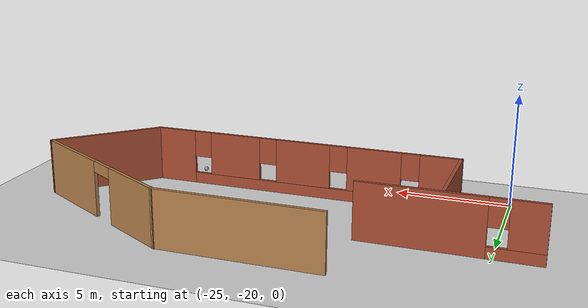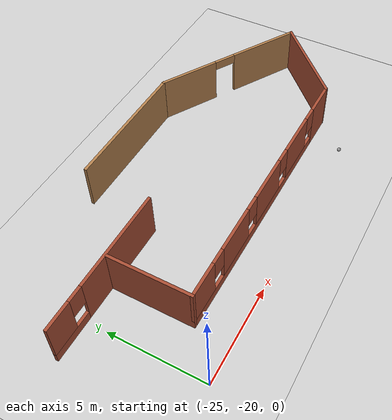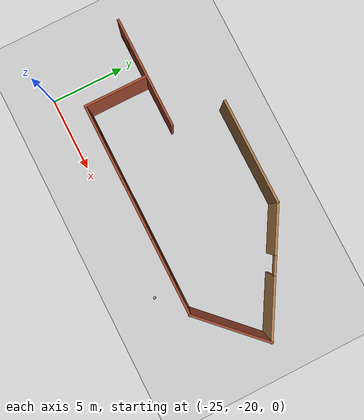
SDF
<sdf version="1.6">
 <world name="default">
  <model name="ground_plane">
   <static>1</static>
   <link name="link">
    <collision name="collision">
     <geometry><plane><normal>0 0 1</normal><size>100 100</size></plane></geometry>
     <surface><friction><ode><mu>100</mu><mu2>50</mu2></ode></friction></surface>
    </collision>
    <visual name="visual">
     <cast_shadows>0</cast_shadows>
     <geometry><plane><normal>0 0 1</normal><size>100 100</size></plane></geometry>
     <material>
      <script><uri>file://media/materials/scripts/gazebo.material</uri><name>Gazebo/Grey</name></script>
     </material>
    </visual>
   </link>
  </model>
  <model name="spiral_office">
   <link name="Wall_23">
    <collision name="Wall_23_Collision">
     <geometry><box><size>5.25 0.15 2.5</size></box></geometry>
     <pose>0 0 1.25 0 -0 0</pose>
    </collision>
    <visual name="Wall_23_Visual">
     <pose>0 0 1.25 0 -0 0</pose>
     <geometry><box><size>5.25 0.15 2.5</size></box></geometry>
     <material>
      <script><uri>file://media/materials/scripts/gazebo.material</uri><name>Gazebo/Bricks</name></script>
      <ambient>1 1 1 1</ambient>
     </material>
     <meta><layer>0</layer></meta>
    </visual>
    <pose>-7.11801 -16.3667 0 0 0 -2.35619</pose>
   </link>
   <link name="Wall_24">
    <pose>-15.9711 -18.1698 0 0 -0 3.14159</pose>
    <visual name="Wall_24_Visual_0">
     <pose>-6.17797 0 1.25 0 -0 0</pose>
     <geometry><box><size>1.89406 0.15 2.5</size></box></geometry>
     <material>
      <script><uri>file://media/materials/scripts/gazebo.material</uri><name>Gazebo/Bricks</name></script>
      <ambient>1 1 1 1</ambient>
     </material>
     <meta><layer>0</layer></meta>
    </visual>
    <collision name="Wall_24_Collision_0">
     <geometry><box><size>1.89406 0.15 2.5</size></box></geometry>
     <pose>-6.17797 0 1.25 0 -0 0</pose>
    </collision>
    <visual name="Wall_24_Visual_1">
     <pose>0.947032 0 0.25 0 -0 0</pose>
     <geometry><box><size>12.3559 0.15 0.5</size></box></geometry>
     <material>
      <script><uri>file://media/materials/scripts/gazebo.material</uri><name>Gazebo/Bricks</name></script>
      <ambient>1 1 1 1</ambient>
     </material>
     <meta><layer>0</layer></meta>
    </visual>
    <collision name="Wall_24_Collision_1">
     <geometry><box><size>12.3559 0.15 0.5</size></box></geometry>
     <pose>0.947032 0 0.25 0 -0 0</pose>
    </collision>
    <visual name="Wall_24_Visual_2">
     <pose>-3.22586 0 1.5 0 -0 0</pose>
     <geometry><box><size>2.41015 0.15 2</size></box></geometry>
     <material>
      <script><uri>file://media/materials/scripts/gazebo.material</uri><name>Gazebo/Bricks</name></script>
      <ambient>1 1 1 1</ambient>
     </material>
     <meta><layer>0</layer></meta>
    </visual>
    <collision name="Wall_24_Collision_2">
     <geometry><box><size>2.41015 0.15 2</size></box></geometry>
     <pose>-3.22586 0 1.5 0 -0 0</pose>
    </collision>
    <visual name="Wall_24_Visual_3">
     <pose>0.037792 0 1.5 0 -0 0</pose>
     <geometry><box><size>2.51715 0.15 2</size></box></geometry>
     <material>
      <script><uri>file://media/materials/scripts/gazebo.material</uri><name>Gazebo/Bricks</name></script>
      <ambient>1 1 1 1</ambient>
     </material>
     <meta><layer>0</layer></meta>
    </visual>
    <collision name="Wall_24_Collision_3">
     <geometry><box><size>2.51715 0.15 2</size></box></geometry>
     <pose>0.037792 0 1.5 0 -0 0</pose>
    </collision>
    <visual name="Wall_24_Visual_4">
     <pose>3.30145 0 1.5 0 -0 0</pose>
     <geometry><box><size>2.41015 0.15 2</size></box></geometry>
     <material>
      <script><uri>file://media/materials/scripts/gazebo.material</uri><name>Gazebo/Bricks</name></script>
      <ambient>1 1 1 1</ambient>
     </material>
     <meta><layer>0</layer></meta>
    </visual>
    <collision name="Wall_24_Collision_4">
     <geometry><box><size>2.41015 0.15 2</size></box></geometry>
     <pose>3.30145 0 1.5 0 -0 0</pose>
    </collision>
    <visual name="Wall_24_Visual_5">
     <pose>6.21576 0 1.5 0 -0 0</pose>
     <geometry><box><size>1.81848 0.15 2</size></box></geometry>
     <material>
      <script><uri>file://media/materials/scripts/gazebo.material</uri><name>Gazebo/Bricks</name></script>
      <ambient>1 1 1 1</ambient>
     </material>
     <meta><layer>0</layer></meta>
    </visual>
    <collision name="Wall_24_Collision_5">
     <geometry><box><size>1.81848 0.15 2</size></box></geometry>
     <pose>6.21576 0 1.5 0 -0 0</pose>
    </collision>
    <visual name="Wall_24_Visual_6">
     <pose>-4.83094 0 1.9 0 -0 0</pose>
     <geometry><box><size>0.8 0.15 1.2</size></box></geometry>
     <material>
      <script><uri>file://media/materials/scripts/gazebo.material</uri><name>Gazebo/Bricks</name></script>
      <ambient>1 1 1 1</ambient>
     </material>
     <meta><layer>0</layer></meta>
    </visual>
    <collision name="Wall_24_Collision_6">
     <geometry><box><size>0.8 0.15 1.2</size></box></geometry>
     <pose>-4.83094 0 1.9 0 -0 0</pose>
    </collision>
    <visual name="Wall_24_Visual_7">
     <pose>-1.62078 0 1.9 0 -0 0</pose>
     <geometry><box><size>0.8 0.15 1.2</size></box></geometry>
     <material>
      <script><uri>file://media/materials/scripts/gazebo.material</uri><name>Gazebo/Bricks</name></script>
      <ambient>1 1 1 1</ambient>
     </material>
     <meta><layer>0</layer></meta>
    </visual>
    <collision name="Wall_24_Collision_7">
     <geometry><box><size>0.8 0.15 1.2</size></box></geometry>
     <pose>-1.62078 0 1.9 0 -0 0</pose>
    </collision>
    <visual name="Wall_24_Visual_8">
     <pose>1.69637 0 1.9 0 -0 0</pose>
     <geometry><box><size>0.8 0.15 1.2</size></box></geometry>
     <material>
      <script><uri>file://media/materials/scripts/gazebo.material</uri><name>Gazebo/Bricks</name></script>
      <ambient>1 1 1 1</ambient>
     </material>
     <meta><layer>0</layer></meta>
    </visual>
    <collision name="Wall_24_Collision_8">
     <geometry><box><size>0.8 0.15 1.2</size></box></geometry>
     <pose>1.69637 0 1.9 0 -0 0</pose>
    </collision>
    <visual name="Wall_24_Visual_9">
     <pose>4.90652 0 1.9 0 -0 0</pose>
     <geometry><box><size>0.8 0.15 1.2</size></box></geometry>
     <material>
      <script><uri>file://media/materials/scripts/gazebo.material</uri><name>Gazebo/Bricks</name></script>
      <ambient>1 1 1 1</ambient>
     </material>
     <meta><layer>0</layer></meta>
    </visual>
    <collision name="Wall_24_Collision_9">
     <geometry><box><size>0.8 0.15 1.2</size></box></geometry>
     <pose>4.90652 0 1.9 0 -0 0</pose>
    </collision>
   </link>
   <link name="Wall_25">
    <collision name="Wall_25_Collision">
     <geometry><box><size>4.25 0.15 2.5</size></box></geometry>
     <pose>0 0 1.25 0 -0 0</pose>
    </collision>
    <visual name="Wall_25_Visual">
     <pose>0 0 1.25 0 -0 0</pose>
     <geometry><box><size>4.25 0.15 2.5</size></box></geometry>
     <material>
      <script><uri>file://media/materials/scripts/gazebo.material</uri><name>Gazebo/Bricks</name></script>
      <ambient>1 1 1 1</ambient>
     </material>
     <meta><layer>0</layer></meta>
    </visual>
    <pose>-23.0211 -16.1198 0 0 -0 1.5708</pose>
   </link>
   <link name="Wall_27">
    <pose>-8.9041 -12.476 0 0 -0 2.61479</pose>
    <visual name="Wall_27_Visual_0">
     <pose>-2.23349 0 1.25 0 -0 0</pose>
     <geometry><box><size>3.98736 0.15 2.5</size></box></geometry>
     <material>
      <script><uri>file://media/materials/scripts/gazebo.material</uri><name>Gazebo/Wood</name></script>
      <ambient>1 1 1 1</ambient>
     </material>
     <meta><layer>0</layer></meta>
    </visual>
    <collision name="Wall_27_Collision_0">
     <geometry><box><size>3.98736 0.15 2.5</size></box></geometry>
     <pose>-2.23349 0 1.25 0 -0 0</pose>
    </collision>
    <visual name="Wall_27_Visual_1">
     <pose>2.59368 0 1.25 0 -0 0</pose>
     <geometry><box><size>3.26697 0.15 2.5</size></box></geometry>
     <material>
      <script><uri>file://media/materials/scripts/gazebo.material</uri><name>Gazebo/Wood</name></script>
      <ambient>1 1 1 1</ambient>
     </material>
     <meta><layer>0</layer></meta>
    </visual>
    <collision name="Wall_27_Collision_1">
     <geometry><box><size>3.26697 0.15 2.5</size></box></geometry>
     <pose>2.59368 0 1.25 0 -0 0</pose>
    </collision>
    <visual name="Wall_27_Visual_2">
     <pose>0.360193 0 2.25 0 -0 0</pose>
     <geometry><box><size>1.2 0.15 0.5</size></box></geometry>
     <material>
      <script><uri>file://media/materials/scripts/gazebo.material</uri><name>Gazebo/Wood</name></script>
      <ambient>1 1 1 1</ambient>
     </material>
     <meta><layer>0</layer></meta>
    </visual>
    <collision name="Wall_27_Collision_2">
     <geometry><box><size>1.2 0.15 0.5</size></box></geometry>
     <pose>0.360193 0 2.25 0 -0 0</pose>
    </collision>
   </link>
   <link name="Wall_28">
    <collision name="Wall_28_Collision">
     <geometry><box><size>7.1 0.15 2.5</size></box></geometry>
     <pose>0 0 1.25 0 -0 0</pose>
    </collision>
    <visual name="Wall_28_Visual">
     <pose>0 0 1.25 0 -0 0</pose>
     <geometry><box><size>7.1 0.15 2.5</size></box></geometry>
     <material>
      <script><uri>file://media/materials/scripts/gazebo.material</uri><name>Gazebo/Wood</name></script>
      <ambient>1 1 1 1</ambient>
     </material>
     <meta><layer>0</layer></meta>
    </visual>
    <pose>-15.9683 -10.3884 0 0 -0 3.14159</pose>
   </link>
   <link name="Wall_6">
    <pose>-23.2596 -13.9494 0 0 -0 3.14159</pose>
    <visual name="Wall_6_Visual_0">
     <pose>-1.12907 0 1.25 0 -0 0</pose>
     <geometry><box><size>5.24185 0.15 2.5</size></box></geometry>
     <material>
      <script><uri>file://media/materials/scripts/gazebo.material</uri><name>Gazebo/Bricks</name></script>
      <ambient>1 1 1 1</ambient>
     </material>
     <meta><layer>0</layer></meta>
    </visual>
    <collision name="Wall_6_Collision_0">
     <geometry><box><size>5.24185 0.15 2.5</size></box></geometry>
     <pose>-1.12907 0 1.25 0 -0 0</pose>
    </collision>
    <visual name="Wall_6_Visual_1">
     <pose>2.62093 0 0.25 0 -0 0</pose>
     <geometry><box><size>2.25815 0.15 0.5</size></box></geometry>
     <material>
      <script><uri>file://media/materials/scripts/gazebo.material</uri><name>Gazebo/Bricks</name></script>
      <ambient>1 1 1 1</ambient>
     </material>
     <meta><layer>0</layer></meta>
    </visual>
    <collision name="Wall_6_Collision_1">
     <geometry><box><size>2.25815 0.15 0.5</size></box></geometry>
     <pose>2.62093 0 0.25 0 -0 0</pose>
    </collision>
    <visual name="Wall_6_Visual_2">
     <pose>3.02093 0 1.5 0 -0 0</pose>
     <geometry><box><size>1.45815 0.15 2</size></box></geometry>
     <material>
      <script><uri>file://media/materials/scripts/gazebo.material</uri><name>Gazebo/Bricks</name></script>
      <ambient>1 1 1 1</ambient>
     </material>
     <meta><layer>0</layer></meta>
    </visual>
    <collision name="Wall_6_Collision_2">
     <geometry><box><size>1.45815 0.15 2</size></box></geometry>
     <pose>3.02093 0 1.5 0 -0 0</pose>
    </collision>
    <visual name="Wall_6_Visual_3">
     <pose>1.89185 0 1.9 0 -0 0</pose>
     <geometry><box><size>0.8 0.15 1.2</size></box></geometry>
     <material>
      <script><uri>file://media/materials/scripts/gazebo.material</uri><name>Gazebo/Bricks</name></script>
      <ambient>1 1 1 1</ambient>
     </material>
     <meta><layer>0</layer></meta>
    </visual>
    <collision name="Wall_6_Collision_3">
     <geometry><box><size>0.8 0.15 1.2</size></box></geometry>
     <pose>1.89185 0 1.9 0 -0 0</pose>
    </collision>
   </link>
   <static>1</static>
  </model>
  <model name="my_ball">
   <link name="link_0">
    <inertial>
     <mass>1</mass>
     <inertia><ixx>0.1</ixx><ixy>0</ixy><ixz>0</ixz><iyy>0.1</iyy><iyz>0</iyz><izz>0.1</izz></inertia>
    </inertial>
    <visual name="visual">
     <geometry><sphere><radius>0.1</radius></sphere></geometry>
     <material>
      <lighting>1</lighting>
      <script><uri>file://media/materials/scripts/gazebo.material</uri><name>Gazebo/Grey</name></script>
      <shader type="pixel"><normal_map>__default__</normal_map></shader>
      <ambient>1 1 1 1</ambient>
      <diffuse>1 1 1 1</diffuse>
      <specular>1 1 1 1</specular>
      <emissive>1 1 1 1</emissive>
     </material>
    </visual>
    <collision name="collision">
     <geometry><sphere><radius>0.1</radius></sphere></geometry>
     <surface>
      <friction>
       <ode><mu>1</mu><mu2>1</mu2><fdir1>0 0 0</fdir1><slip1>0</slip1><slip2>0</slip2></ode>
       <torsional>
        <coefficient>1</coefficient>
        <patch_radius>0</patch_radius>
        <surface_radius>0</surface_radius>
        <use_patch_radius>1</use_patch_radius>
        <ode><slip>0</slip></ode>
       </torsional>
      </friction>
      <bounce><restitution_coefficient>0</restitution_coefficient><threshold>1e+06</threshold></bounce>
      <contact>
       <collide_without_contact>0</collide_without_contact>
       <collide_without_contact_bitmask>1</collide_without_contact_bitmask>
       <collide_bitmask>1</collide_bitmask>
       <ode>
        <soft_cfm>0</soft_cfm>
        <soft_erp>0.2</soft_erp>
        <kp>1e+13</kp>
        <kd>1</kd>
        <max_vel>0.01</max_vel>
        <min_depth>0</min_depth>
       </ode>
       <bullet>
        <split_impulse>1</split_impulse>
        <split_impulse_penetration_threshold>-0.01</split_impulse_penetration_threshold>
        <soft_cfm>0</soft_cfm>
        <soft_erp>0.2</soft_erp>
        <kp>1e+13</kp>
        <kd>1</kd>
       </bullet>
      </contact>
     </surface>
    </collision>
   </link>
   <static>0</static>
   <pose>-10.4797 -19.8342 0.1 0 -0 0</pose>
  </model>
 </world>
</sdf>
